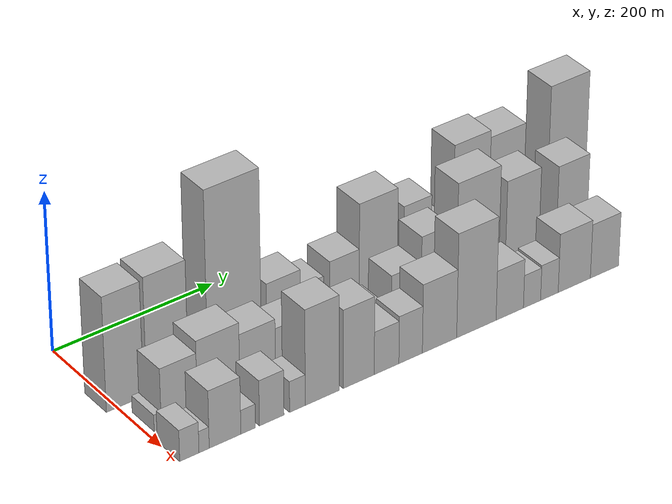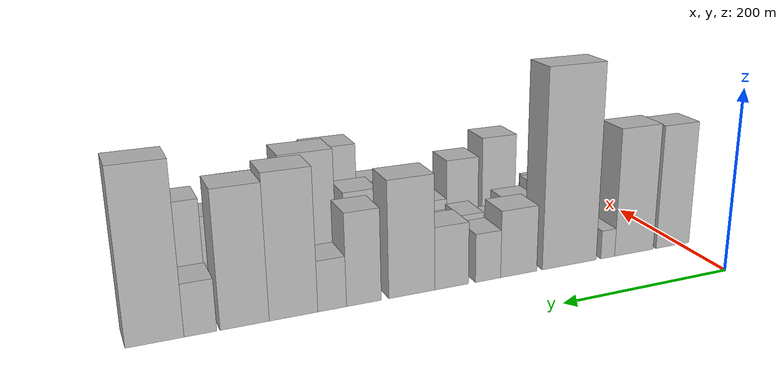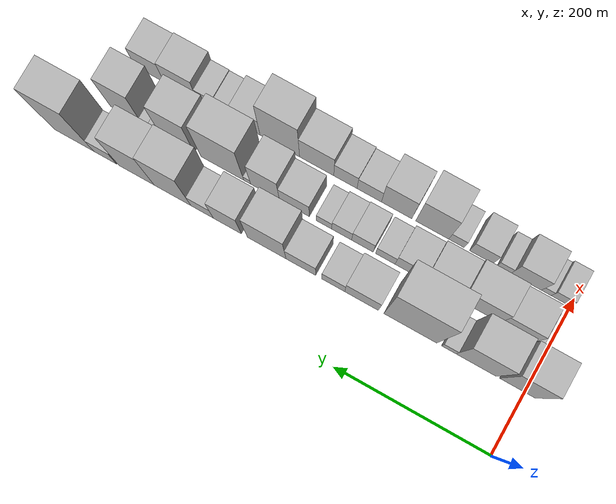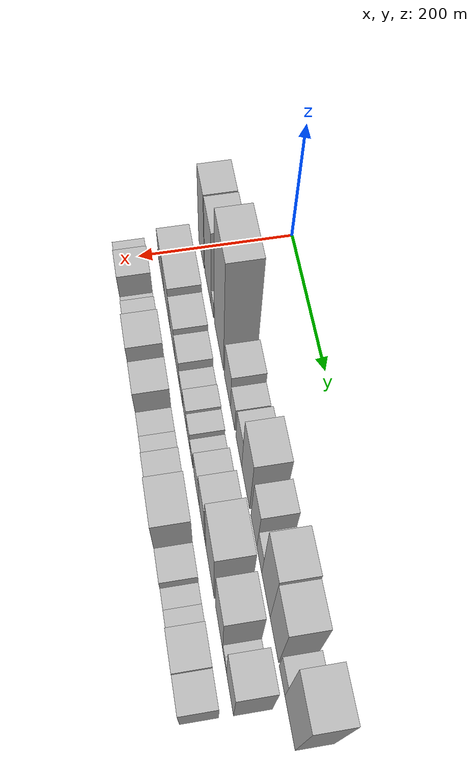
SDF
<sdf version="1.6">
 <world name="default">
  <model name="building_17">
   <static>1</static>
   <pose>100.0000 9.3949 0 0.000000 0.000000 0.000000</pose>
   <link name="link">
    <pose>0 0 72.00 0 0 0</pose>
    <collision name="collision"><geometry><box><size>40.0000 45.2859 144.0000</size></box></geometry></collision>
    <visual name="visual">
     <cast_shadows>0</cast_shadows>
     <geometry><box><size>40.0000 45.2859 144.0000</size></box></geometry>
     <material>
      <script>
       <uri>model://HANNAS_wall/materials/scripts</uri>
       <uri>model://HANNAS_wall/materials/textures</uri>
       <name>vrc/HANNAS_wall</name>
      </script>
     </material>
    </visual>
   </link>
  </model>
  <model name="building_18">
   <static>1</static>
   <pose>100.0000 61.7021 0 0.000000 0.000000 0.000000</pose>
   <link name="link">
    <pose>0 0 73.50 0 0 0</pose>
    <collision name="collision"><geometry><box><size>40.0000 51.3285 147.0000</size></box></geometry></collision>
    <visual name="visual">
     <cast_shadows>0</cast_shadows>
     <geometry><box><size>40.0000 51.3285 147.0000</size></box></geometry>
     <material>
      <script>
       <uri>model://HANNAS_wall/materials/scripts</uri>
       <uri>model://HANNAS_wall/materials/textures</uri>
       <name>vrc/HANNAS_wall</name>
      </script>
     </material>
    </visual>
   </link>
  </model>
  <model name="building_19">
   <static>1</static>
   <pose>100.0000 96.4428 0 0.000000 0.000000 0.000000</pose>
   <link name="link">
    <pose>0 0 16.50 0 0 0</pose>
    <collision name="collision"><geometry><box><size>40.0000 18.1529 33.0000</size></box></geometry></collision>
    <visual name="visual">
     <cast_shadows>0</cast_shadows>
     <geometry><box><size>40.0000 18.1529 33.0000</size></box></geometry>
     <material>
      <script>
       <uri>model://HANNAS_wall/materials/scripts</uri>
       <uri>model://HANNAS_wall/materials/textures</uri>
       <name>vrc/HANNAS_wall</name>
      </script>
     </material>
    </visual>
   </link>
  </model>
  <model name="building_20">
   <static>1</static>
   <pose>100.0000 145.3928 0 0.000000 0.000000 0.000000</pose>
   <link name="link">
    <pose>0 0 111.00 0 0 0</pose>
    <collision name="collision"><geometry><box><size>40.0000 67.7470 222.0000</size></box></geometry></collision>
    <visual name="visual">
     <cast_shadows>0</cast_shadows>
     <geometry><box><size>40.0000 67.7470 222.0000</size></box></geometry>
     <material>
      <script>
       <uri>model://HANNAS_wall/materials/scripts</uri>
       <uri>model://HANNAS_wall/materials/textures</uri>
       <name>vrc/HANNAS_wall</name>
      </script>
     </material>
    </visual>
   </link>
  </model>
  <model name="building_21">
   <static>1</static>
   <pose>100.0000 207.8887 0 0.000000 0.000000 0.000000</pose>
   <link name="link">
    <pose>0 0 37.50 0 0 0</pose>
    <collision name="collision"><geometry><box><size>40.0000 43.2449 75.0000</size></box></geometry></collision>
    <visual name="visual">
     <cast_shadows>0</cast_shadows>
     <geometry><box><size>40.0000 43.2449 75.0000</size></box></geometry>
     <material>
      <script>
       <uri>model://HANNAS_wall/materials/scripts</uri>
       <uri>model://HANNAS_wall/materials/textures</uri>
       <name>vrc/HANNAS_wall</name>
      </script>
     </material>
    </visual>
   </link>
  </model>
  <model name="building_22">
   <static>1</static>
   <pose>100.0000 244.3241 0 0.000000 0.000000 0.000000</pose>
   <link name="link">
    <pose>0 0 27.00 0 0 0</pose>
    <collision name="collision"><geometry><box><size>40.0000 29.6258 54.0000</size></box></geometry></collision>
    <visual name="visual">
     <cast_shadows>0</cast_shadows>
     <geometry><box><size>40.0000 29.6258 54.0000</size></box></geometry>
     <material>
      <script>
       <uri>model://HANNAS_wall/materials/scripts</uri>
       <uri>model://HANNAS_wall/materials/textures</uri>
       <name>vrc/HANNAS_wall</name>
      </script>
     </material>
    </visual>
   </link>
  </model>
  <model name="building_23">
   <static>1</static>
   <pose>100.0000 286.3577 0 0.000000 0.000000 0.000000</pose>
   <link name="link">
    <pose>0 0 34.50 0 0 0</pose>
    <collision name="collision"><geometry><box><size>40.0000 38.4415 69.0000</size></box></geometry></collision>
    <visual name="visual">
     <cast_shadows>0</cast_shadows>
     <geometry><box><size>40.0000 38.4415 69.0000</size></box></geometry>
     <material>
      <script>
       <uri>model://HANNAS_wall/materials/scripts</uri>
       <uri>model://HANNAS_wall/materials/textures</uri>
       <name>vrc/HANNAS_wall</name>
      </script>
     </material>
    </visual>
   </link>
  </model>
  <model name="building_24">
   <static>1</static>
   <pose>100.0000 330.7037 0 0.000000 0.000000 0.000000</pose>
   <link name="link">
    <pose>0 0 63.00 0 0 0</pose>
    <collision name="collision"><geometry><box><size>40.0000 50.2504 126.0000</size></box></geometry></collision>
    <visual name="visual">
     <cast_shadows>0</cast_shadows>
     <geometry><box><size>40.0000 50.2504 126.0000</size></box></geometry>
     <material>
      <script>
       <uri>model://HANNAS_wall/materials/scripts</uri>
       <uri>model://HANNAS_wall/materials/textures</uri>
       <name>vrc/HANNAS_wall</name>
      </script>
     </material>
    </visual>
   </link>
  </model>
  <model name="building_25">
   <static>1</static>
   <pose>100.0000 382.1720 0 0.000000 0.000000 0.000000</pose>
   <link name="link">
    <pose>0 0 49.50 0 0 0</pose>
    <collision name="collision"><geometry><box><size>40.0000 36.6862 99.0000</size></box></geometry></collision>
    <visual name="visual">
     <cast_shadows>0</cast_shadows>
     <geometry><box><size>40.0000 36.6862 99.0000</size></box></geometry>
     <material>
      <script>
       <uri>model://HANNAS_wall/materials/scripts</uri>
       <uri>model://HANNAS_wall/materials/textures</uri>
       <name>vrc/HANNAS_wall</name>
      </script>
     </material>
    </visual>
   </link>
  </model>
  <model name="building_26">
   <static>1</static>
   <pose>100.0000 415.2358 0 0.000000 0.000000 0.000000</pose>
   <link name="link">
    <pose>0 0 27.00 0 0 0</pose>
    <collision name="collision"><geometry><box><size>40.0000 29.4415 54.0000</size></box></geometry></collision>
    <visual name="visual">
     <cast_shadows>0</cast_shadows>
     <geometry><box><size>40.0000 29.4415 54.0000</size></box></geometry>
     <material>
      <script>
       <uri>model://HANNAS_wall/materials/scripts</uri>
       <uri>model://HANNAS_wall/materials/textures</uri>
       <name>vrc/HANNAS_wall</name>
      </script>
     </material>
    </visual>
   </link>
  </model>
  <model name="building_27">
   <static>1</static>
   <pose>100.0000 454.1759 0 0.000000 0.000000 0.000000</pose>
   <link name="link">
    <pose>0 0 75.00 0 0 0</pose>
    <collision name="collision"><geometry><box><size>40.0000 48.4387 150.0000</size></box></geometry></collision>
    <visual name="visual">
     <cast_shadows>0</cast_shadows>
     <geometry><box><size>40.0000 48.4387 150.0000</size></box></geometry>
     <material>
      <script>
       <uri>model://HANNAS_wall/materials/scripts</uri>
       <uri>model://HANNAS_wall/materials/textures</uri>
       <name>vrc/HANNAS_wall</name>
      </script>
     </material>
    </visual>
   </link>
  </model>
  <model name="building_28">
   <static>1</static>
   <pose>100.0000 501.9611 0 0.000000 0.000000 0.000000</pose>
   <link name="link">
    <pose>0 0 70.50 0 0 0</pose>
    <collision name="collision"><geometry><box><size>40.0000 47.1316 141.0000</size></box></geometry></collision>
    <visual name="visual">
     <cast_shadows>0</cast_shadows>
     <geometry><box><size>40.0000 47.1316 141.0000</size></box></geometry>
     <material>
      <script>
       <uri>model://HANNAS_wall/materials/scripts</uri>
       <uri>model://HANNAS_wall/materials/textures</uri>
       <name>vrc/HANNAS_wall</name>
      </script>
     </material>
    </visual>
   </link>
  </model>
  <model name="building_29">
   <static>1</static>
   <pose>100.0000 543.6830 0 0.000000 0.000000 0.000000</pose>
   <link name="link">
    <pose>0 0 27.00 0 0 0</pose>
    <collision name="collision"><geometry><box><size>40.0000 30.3123 54.0000</size></box></geometry></collision>
    <visual name="visual">
     <cast_shadows>0</cast_shadows>
     <geometry><box><size>40.0000 30.3123 54.0000</size></box></geometry>
     <material>
      <script>
       <uri>model://HANNAS_wall/materials/scripts</uri>
       <uri>model://HANNAS_wall/materials/textures</uri>
       <name>vrc/HANNAS_wall</name>
      </script>
     </material>
    </visual>
   </link>
  </model>
  <model name="building_30">
   <static>1</static>
   <pose>100.0000 585.3237 0 0.000000 0.000000 0.000000</pose>
   <link name="link">
    <pose>0 0 87.00 0 0 0</pose>
    <collision name="collision"><geometry><box><size>40.0000 52.9691 174.0000</size></box></geometry></collision>
    <visual name="visual">
     <cast_shadows>0</cast_shadows>
     <geometry><box><size>40.0000 52.9691 174.0000</size></box></geometry>
     <material>
      <script>
       <uri>model://HANNAS_wall/materials/scripts</uri>
       <uri>model://HANNAS_wall/materials/textures</uri>
       <name>vrc/HANNAS_wall</name>
      </script>
     </material>
    </visual>
   </link>
  </model>
  <model name="building_49">
   <static>1</static>
   <pose>155.0000 12.3418 0 0.000000 0.000000 0.000000</pose>
   <link name="link">
    <pose>0 0 10.50 0 0 0</pose>
    <collision name="collision"><geometry><box><size>40.0000 8.6510 21.0000</size></box></geometry></collision>
    <visual name="visual">
     <cast_shadows>0</cast_shadows>
     <geometry><box><size>40.0000 8.6510 21.0000</size></box></geometry>
     <material>
      <script>
       <uri>model://HANNAS_wall/materials/scripts</uri>
       <uri>model://HANNAS_wall/materials/textures</uri>
       <name>vrc/HANNAS_wall</name>
      </script>
     </material>
    </visual>
   </link>
  </model>
  <model name="building_50">
   <static>1</static>
   <pose>155.0000 38.7052 0 0.000000 0.000000 0.000000</pose>
   <link name="link">
    <pose>0 0 37.50 0 0 0</pose>
    <collision name="collision"><geometry><box><size>40.0000 44.0758 75.0000</size></box></geometry></collision>
    <visual name="visual">
     <cast_shadows>0</cast_shadows>
     <geometry><box><size>40.0000 44.0758 75.0000</size></box></geometry>
     <material>
      <script>
       <uri>model://HANNAS_wall/materials/scripts</uri>
       <uri>model://HANNAS_wall/materials/textures</uri>
       <name>vrc/HANNAS_wall</name>
      </script>
     </material>
    </visual>
   </link>
  </model>
  <model name="building_51">
   <static>1</static>
   <pose>155.0000 87.0932 0 0.000000 0.000000 0.000000</pose>
   <link name="link">
    <pose>0 0 45.00 0 0 0</pose>
    <collision name="collision"><geometry><box><size>40.0000 52.7002 90.0000</size></box></geometry></collision>
    <visual name="visual">
     <cast_shadows>0</cast_shadows>
     <geometry><box><size>40.0000 52.7002 90.0000</size></box></geometry>
     <material>
      <script>
       <uri>model://HANNAS_wall/materials/scripts</uri>
       <uri>model://HANNAS_wall/materials/textures</uri>
       <name>vrc/HANNAS_wall</name>
      </script>
     </material>
    </visual>
   </link>
  </model>
  <model name="building_52">
   <static>1</static>
   <pose>155.0000 135.7613 0 0.000000 0.000000 0.000000</pose>
   <link name="link">
    <pose>0 0 37.50 0 0 0</pose>
    <collision name="collision"><geometry><box><size>40.0000 44.6360 75.0000</size></box></geometry></collision>
    <visual name="visual">
     <cast_shadows>0</cast_shadows>
     <geometry><box><size>40.0000 44.6360 75.0000</size></box></geometry>
     <material>
      <script>
       <uri>model://HANNAS_wall/materials/scripts</uri>
       <uri>model://HANNAS_wall/materials/textures</uri>
       <name>vrc/HANNAS_wall</name>
      </script>
     </material>
    </visual>
   </link>
  </model>
  <model name="building_53">
   <static>1</static>
   <pose>155.0000 176.6561 0 0.000000 0.000000 0.000000</pose>
   <link name="link">
    <pose>0 0 31.50 0 0 0</pose>
    <collision name="collision"><geometry><box><size>40.0000 37.1536 63.0000</size></box></geometry></collision>
    <visual name="visual">
     <cast_shadows>0</cast_shadows>
     <geometry><box><size>40.0000 37.1536 63.0000</size></box></geometry>
     <material>
      <script>
       <uri>model://HANNAS_wall/materials/scripts</uri>
       <uri>model://HANNAS_wall/materials/textures</uri>
       <name>vrc/HANNAS_wall</name>
      </script>
     </material>
    </visual>
   </link>
  </model>
  <model name="building_54">
   <static>1</static>
   <pose>155.0000 207.8142 0 0.000000 0.000000 0.000000</pose>
   <link name="link">
    <pose>0 0 22.50 0 0 0</pose>
    <collision name="collision"><geometry><box><size>40.0000 25.1626 45.0000</size></box></geometry></collision>
    <visual name="visual">
     <cast_shadows>0</cast_shadows>
     <geometry><box><size>40.0000 25.1626 45.0000</size></box></geometry>
     <material>
      <script>
       <uri>model://HANNAS_wall/materials/scripts</uri>
       <uri>model://HANNAS_wall/materials/textures</uri>
       <name>vrc/HANNAS_wall</name>
      </script>
     </material>
    </visual>
   </link>
  </model>
  <model name="building_55">
   <static>1</static>
   <pose>155.0000 237.3686 0 0.000000 0.000000 0.000000</pose>
   <link name="link">
    <pose>0 0 27.00 0 0 0</pose>
    <collision name="collision"><geometry><box><size>40.0000 27.9462 54.0000</size></box></geometry></collision>
    <visual name="visual">
     <cast_shadows>0</cast_shadows>
     <geometry><box><size>40.0000 27.9462 54.0000</size></box></geometry>
     <material>
      <script>
       <uri>model://HANNAS_wall/materials/scripts</uri>
       <uri>model://HANNAS_wall/materials/textures</uri>
       <name>vrc/HANNAS_wall</name>
      </script>
     </material>
    </visual>
   </link>
  </model>
  <model name="building_56">
   <static>1</static>
   <pose>155.0000 264.2852 0 0.000000 0.000000 0.000000</pose>
   <link name="link">
    <pose>0 0 24.00 0 0 0</pose>
    <collision name="collision"><geometry><box><size>40.0000 25.8870 48.0000</size></box></geometry></collision>
    <visual name="visual">
     <cast_shadows>0</cast_shadows>
     <geometry><box><size>40.0000 25.8870 48.0000</size></box></geometry>
     <material>
      <script>
       <uri>model://HANNAS_wall/materials/scripts</uri>
       <uri>model://HANNAS_wall/materials/textures</uri>
       <name>vrc/HANNAS_wall</name>
      </script>
     </material>
    </visual>
   </link>
  </model>
  <model name="building_57">
   <static>1</static>
   <pose>155.0000 287.2711 0 0.000000 0.000000 0.000000</pose>
   <link name="link">
    <pose>0 0 18.00 0 0 0</pose>
    <collision name="collision"><geometry><box><size>40.0000 20.0847 36.0000</size></box></geometry></collision>
    <visual name="visual">
     <cast_shadows>0</cast_shadows>
     <geometry><box><size>40.0000 20.0847 36.0000</size></box></geometry>
     <material>
      <script>
       <uri>model://HANNAS_wall/materials/scripts</uri>
       <uri>model://HANNAS_wall/materials/textures</uri>
       <name>vrc/HANNAS_wall</name>
      </script>
     </material>
    </visual>
   </link>
  </model>
  <model name="building_58">
   <static>1</static>
   <pose>155.0000 325.8514 0 0.000000 0.000000 0.000000</pose>
   <link name="link">
    <pose>0 0 33.00 0 0 0</pose>
    <collision name="collision"><geometry><box><size>40.0000 39.0759 66.0000</size></box></geometry></collision>
    <visual name="visual">
     <cast_shadows>0</cast_shadows>
     <geometry><box><size>40.0000 39.0759 66.0000</size></box></geometry>
     <material>
      <script>
       <uri>model://HANNAS_wall/materials/scripts</uri>
       <uri>model://HANNAS_wall/materials/textures</uri>
       <name>vrc/HANNAS_wall</name>
      </script>
     </material>
    </visual>
   </link>
  </model>
  <model name="building_59">
   <static>1</static>
   <pose>155.0000 364.3384 0 0.000000 0.000000 0.000000</pose>
   <link name="link">
    <pose>0 0 49.50 0 0 0</pose>
    <collision name="collision"><geometry><box><size>40.0000 37.8981 99.0000</size></box></geometry></collision>
    <visual name="visual">
     <cast_shadows>0</cast_shadows>
     <geometry><box><size>40.0000 37.8981 99.0000</size></box></geometry>
     <material>
      <script>
       <uri>model://HANNAS_wall/materials/scripts</uri>
       <uri>model://HANNAS_wall/materials/textures</uri>
       <name>vrc/HANNAS_wall</name>
      </script>
     </material>
    </visual>
   </link>
  </model>
  <model name="building_60">
   <static>1</static>
   <pose>155.0000 387.7461 0 0.000000 0.000000 0.000000</pose>
   <link name="link">
    <pose>0 0 10.50 0 0 0</pose>
    <collision name="collision"><geometry><box><size>40.0000 8.9174 21.0000</size></box></geometry></collision>
    <visual name="visual">
     <cast_shadows>0</cast_shadows>
     <geometry><box><size>40.0000 8.9174 21.0000</size></box></geometry>
     <material>
      <script>
       <uri>model://HANNAS_wall/materials/scripts</uri>
       <uri>model://HANNAS_wall/materials/textures</uri>
       <name>vrc/HANNAS_wall</name>
      </script>
     </material>
    </visual>
   </link>
  </model>
  <model name="building_61">
   <static>1</static>
   <pose>155.0000 420.4338 0 0.000000 0.000000 0.000000</pose>
   <link name="link">
    <pose>0 0 73.50 0 0 0</pose>
    <collision name="collision"><geometry><box><size>40.0000 56.4580 147.0000</size></box></geometry></collision>
    <visual name="visual">
     <cast_shadows>0</cast_shadows>
     <geometry><box><size>40.0000 56.4580 147.0000</size></box></geometry>
     <material>
      <script>
       <uri>model://HANNAS_wall/materials/scripts</uri>
       <uri>model://HANNAS_wall/materials/textures</uri>
       <name>vrc/HANNAS_wall</name>
      </script>
     </material>
    </visual>
   </link>
  </model>
  <model name="building_62">
   <static>1</static>
   <pose>155.0000 480.4092 0 0.000000 0.000000 0.000000</pose>
   <link name="link">
    <pose>0 0 61.50 0 0 0</pose>
    <collision name="collision"><geometry><box><size>40.0000 45.4929 123.0000</size></box></geometry></collision>
    <visual name="visual">
     <cast_shadows>0</cast_shadows>
     <geometry><box><size>40.0000 45.4929 123.0000</size></box></geometry>
     <material>
      <script>
       <uri>model://HANNAS_wall/materials/scripts</uri>
       <uri>model://HANNAS_wall/materials/textures</uri>
       <name>vrc/HANNAS_wall</name>
      </script>
     </material>
    </visual>
   </link>
  </model>
  <model name="building_63">
   <static>1</static>
   <pose>155.0000 509.0724 0 0.000000 0.000000 0.000000</pose>
   <link name="link">
    <pose>0 0 13.50 0 0 0</pose>
    <collision name="collision"><geometry><box><size>40.0000 11.8335 27.0000</size></box></geometry></collision>
    <visual name="visual">
     <cast_shadows>0</cast_shadows>
     <geometry><box><size>40.0000 11.8335 27.0000</size></box></geometry>
     <material>
      <script>
       <uri>model://HANNAS_wall/materials/scripts</uri>
       <uri>model://HANNAS_wall/materials/textures</uri>
       <name>vrc/HANNAS_wall</name>
      </script>
     </material>
    </visual>
   </link>
  </model>
  <model name="building_64">
   <static>1</static>
   <pose>155.0000 521.1236 0 0.000000 0.000000 0.000000</pose>
   <link name="link">
    <pose>0 0 13.50 0 0 0</pose>
    <collision name="collision"><geometry><box><size>40.0000 12.2689 27.0000</size></box></geometry></collision>
    <visual name="visual">
     <cast_shadows>0</cast_shadows>
     <geometry><box><size>40.0000 12.2689 27.0000</size></box></geometry>
     <material>
      <script>
       <uri>model://HANNAS_wall/materials/scripts</uri>
       <uri>model://HANNAS_wall/materials/textures</uri>
       <name>vrc/HANNAS_wall</name>
      </script>
     </material>
    </visual>
   </link>
  </model>
  <model name="building_65">
   <static>1</static>
   <pose>155.0000 548.3630 0 0.000000 0.000000 0.000000</pose>
   <link name="link">
    <pose>0 0 57.00 0 0 0</pose>
    <collision name="collision"><geometry><box><size>40.0000 42.2099 114.0000</size></box></geometry></collision>
    <visual name="visual">
     <cast_shadows>0</cast_shadows>
     <geometry><box><size>40.0000 42.2099 114.0000</size></box></geometry>
     <material>
      <script>
       <uri>model://HANNAS_wall/materials/scripts</uri>
       <uri>model://HANNAS_wall/materials/textures</uri>
       <name>vrc/HANNAS_wall</name>
      </script>
     </material>
    </visual>
   </link>
  </model>
  <model name="building_79">
   <static>1</static>
   <pose>210.0000 13.0824 0 0.000000 0.000000 0.000000</pose>
   <link name="link">
    <pose>0 0 19.50 0 0 0</pose>
    <collision name="collision"><geometry><box><size>40.0000 23.3154 39.0000</size></box></geometry></collision>
    <visual name="visual">
     <cast_shadows>0</cast_shadows>
     <geometry><box><size>40.0000 23.3154 39.0000</size></box></geometry>
     <material>
      <script>
       <uri>model://HANNAS_wall/materials/scripts</uri>
       <uri>model://HANNAS_wall/materials/textures</uri>
       <name>vrc/HANNAS_wall</name>
      </script>
     </material>
    </visual>
   </link>
  </model>
  <model name="building_80">
   <static>1</static>
   <pose>210.0000 30.9591 0 0.000000 0.000000 0.000000</pose>
   <link name="link">
    <pose>0 0 13.50 0 0 0</pose>
    <collision name="collision"><geometry><box><size>40.0000 12.4379 27.0000</size></box></geometry></collision>
    <visual name="visual">
     <cast_shadows>0</cast_shadows>
     <geometry><box><size>40.0000 12.4379 27.0000</size></box></geometry>
     <material>
      <script>
       <uri>model://HANNAS_wall/materials/scripts</uri>
       <uri>model://HANNAS_wall/materials/textures</uri>
       <name>vrc/HANNAS_wall</name>
      </script>
     </material>
    </visual>
   </link>
  </model>
  <model name="building_81">
   <static>1</static>
   <pose>210.0000 56.5316 0 0.000000 0.000000 0.000000</pose>
   <link name="link">
    <pose>0 0 36.00 0 0 0</pose>
    <collision name="collision"><geometry><box><size>40.0000 38.7072 72.0000</size></box></geometry></collision>
    <visual name="visual">
     <cast_shadows>0</cast_shadows>
     <geometry><box><size>40.0000 38.7072 72.0000</size></box></geometry>
     <material>
      <script>
       <uri>model://HANNAS_wall/materials/scripts</uri>
       <uri>model://HANNAS_wall/materials/textures</uri>
       <name>vrc/HANNAS_wall</name>
      </script>
     </material>
    </visual>
   </link>
  </model>
  <model name="building_82">
   <static>1</static>
   <pose>210.0000 84.8071 0 0.000000 0.000000 0.000000</pose>
   <link name="link">
    <pose>0 0 15.00 0 0 0</pose>
    <collision name="collision"><geometry><box><size>40.0000 17.8437 30.0000</size></box></geometry></collision>
    <visual name="visual">
     <cast_shadows>0</cast_shadows>
     <geometry><box><size>40.0000 17.8437 30.0000</size></box></geometry>
     <material>
      <script>
       <uri>model://HANNAS_wall/materials/scripts</uri>
       <uri>model://HANNAS_wall/materials/textures</uri>
       <name>vrc/HANNAS_wall</name>
      </script>
     </material>
    </visual>
   </link>
  </model>
  <model name="building_83">
   <static>1</static>
   <pose>210.0000 113.9441 0 0.000000 0.000000 0.000000</pose>
   <link name="link">
    <pose>0 0 28.50 0 0 0</pose>
    <collision name="collision"><geometry><box><size>40.0000 30.4303 57.0000</size></box></geometry></collision>
    <visual name="visual">
     <cast_shadows>0</cast_shadows>
     <geometry><box><size>40.0000 30.4303 57.0000</size></box></geometry>
     <material>
      <script>
       <uri>model://HANNAS_wall/materials/scripts</uri>
       <uri>model://HANNAS_wall/materials/textures</uri>
       <name>vrc/HANNAS_wall</name>
      </script>
     </material>
    </visual>
   </link>
  </model>
  <model name="building_84">
   <static>1</static>
   <pose>210.0000 145.9851 0 0.000000 0.000000 0.000000</pose>
   <link name="link">
    <pose>0 0 19.50 0 0 0</pose>
    <collision name="collision"><geometry><box><size>40.0000 19.6517 39.0000</size></box></geometry></collision>
    <visual name="visual">
     <cast_shadows>0</cast_shadows>
     <geometry><box><size>40.0000 19.6517 39.0000</size></box></geometry>
     <material>
      <script>
       <uri>model://HANNAS_wall/materials/scripts</uri>
       <uri>model://HANNAS_wall/materials/textures</uri>
       <name>vrc/HANNAS_wall</name>
      </script>
     </material>
    </visual>
   </link>
  </model>
  <model name="building_85">
   <static>1</static>
   <pose>210.0000 177.2001 0 0.000000 0.000000 0.000000</pose>
   <link name="link">
    <pose>0 0 60.00 0 0 0</pose>
    <collision name="collision"><geometry><box><size>40.0000 42.7782 120.0000</size></box></geometry></collision>
    <visual name="visual">
     <cast_shadows>0</cast_shadows>
     <geometry><box><size>40.0000 42.7782 120.0000</size></box></geometry>
     <material>
      <script>
       <uri>model://HANNAS_wall/materials/scripts</uri>
       <uri>model://HANNAS_wall/materials/textures</uri>
       <name>vrc/HANNAS_wall</name>
      </script>
     </material>
    </visual>
   </link>
  </model>
  <model name="building_86">
   <static>1</static>
   <pose>210.0000 223.3589 0 0.000000 0.000000 0.000000</pose>
   <link name="link">
    <pose>0 0 49.50 0 0 0</pose>
    <collision name="collision"><geometry><box><size>40.0000 39.5394 99.0000</size></box></geometry></collision>
    <visual name="visual">
     <cast_shadows>0</cast_shadows>
     <geometry><box><size>40.0000 39.5394 99.0000</size></box></geometry>
     <material>
      <script>
       <uri>model://HANNAS_wall/materials/scripts</uri>
       <uri>model://HANNAS_wall/materials/textures</uri>
       <name>vrc/HANNAS_wall</name>
      </script>
     </material>
    </visual>
   </link>
  </model>
  <model name="building_87">
   <static>1</static>
   <pose>210.0000 259.0063 0 0.000000 0.000000 0.000000</pose>
   <link name="link">
    <pose>0 0 27.00 0 0 0</pose>
    <collision name="collision"><geometry><box><size>40.0000 31.7555 54.0000</size></box></geometry></collision>
    <visual name="visual">
     <cast_shadows>0</cast_shadows>
     <geometry><box><size>40.0000 31.7555 54.0000</size></box></geometry>
     <material>
      <script>
       <uri>model://HANNAS_wall/materials/scripts</uri>
       <uri>model://HANNAS_wall/materials/textures</uri>
       <name>vrc/HANNAS_wall</name>
      </script>
     </material>
    </visual>
   </link>
  </model>
  <model name="building_88">
   <static>1</static>
   <pose>210.0000 290.0843 0 0.000000 0.000000 0.000000</pose>
   <link name="link">
    <pose>0 0 30.00 0 0 0</pose>
    <collision name="collision"><geometry><box><size>40.0000 30.4005 60.0000</size></box></geometry></collision>
    <visual name="visual">
     <cast_shadows>0</cast_shadows>
     <geometry><box><size>40.0000 30.4005 60.0000</size></box></geometry>
     <material>
      <script>
       <uri>model://HANNAS_wall/materials/scripts</uri>
       <uri>model://HANNAS_wall/materials/textures</uri>
       <name>vrc/HANNAS_wall</name>
      </script>
     </material>
    </visual>
   </link>
  </model>
  <model name="building_89">
   <static>1</static>
   <pose>210.0000 327.7229 0 0.000000 0.000000 0.000000</pose>
   <link name="link">
    <pose>0 0 43.50 0 0 0</pose>
    <collision name="collision"><geometry><box><size>40.0000 44.8767 87.0000</size></box></geometry></collision>
    <visual name="visual">
     <cast_shadows>0</cast_shadows>
     <geometry><box><size>40.0000 44.8767 87.0000</size></box></geometry>
     <material>
      <script>
       <uri>model://HANNAS_wall/materials/scripts</uri>
       <uri>model://HANNAS_wall/materials/textures</uri>
       <name>vrc/HANNAS_wall</name>
      </script>
     </material>
    </visual>
   </link>
  </model>
  <model name="building_90">
   <static>1</static>
   <pose>210.0000 376.2579 0 0.000000 0.000000 0.000000</pose>
   <link name="link">
    <pose>0 0 66.00 0 0 0</pose>
    <collision name="collision"><geometry><box><size>40.0000 52.1932 132.0000</size></box></geometry></collision>
    <visual name="visual">
     <cast_shadows>0</cast_shadows>
     <geometry><box><size>40.0000 52.1932 132.0000</size></box></geometry>
     <material>
      <script>
       <uri>model://HANNAS_wall/materials/scripts</uri>
       <uri>model://HANNAS_wall/materials/textures</uri>
       <name>vrc/HANNAS_wall</name>
      </script>
     </material>
    </visual>
   </link>
  </model>
  <model name="building_91">
   <static>1</static>
   <pose>210.0000 420.6712 0 0.000000 0.000000 0.000000</pose>
   <link name="link">
    <pose>0 0 31.50 0 0 0</pose>
    <collision name="collision"><geometry><box><size>40.0000 36.6335 63.0000</size></box></geometry></collision>
    <visual name="visual">
     <cast_shadows>0</cast_shadows>
     <geometry><box><size>40.0000 36.6335 63.0000</size></box></geometry>
     <material>
      <script>
       <uri>model://HANNAS_wall/materials/scripts</uri>
       <uri>model://HANNAS_wall/materials/textures</uri>
       <name>vrc/HANNAS_wall</name>
      </script>
     </material>
    </visual>
   </link>
  </model>
  <model name="building_92">
   <static>1</static>
   <pose>210.0000 450.5598 0 0.000000 0.000000 0.000000</pose>
   <link name="link">
    <pose>0 0 21.00 0 0 0</pose>
    <collision name="collision"><geometry><box><size>40.0000 23.1437 42.0000</size></box></geometry></collision>
    <visual name="visual">
     <cast_shadows>0</cast_shadows>
     <geometry><box><size>40.0000 23.1437 42.0000</size></box></geometry>
     <material>
      <script>
       <uri>model://HANNAS_wall/materials/scripts</uri>
       <uri>model://HANNAS_wall/materials/textures</uri>
       <name>vrc/HANNAS_wall</name>
      </script>
     </material>
    </visual>
   </link>
  </model>
  <model name="building_93">
   <static>1</static>
   <pose>210.0000 474.0695 0 0.000000 0.000000 0.000000</pose>
   <link name="link">
    <pose>0 0 22.50 0 0 0</pose>
    <collision name="collision"><geometry><box><size>40.0000 23.8755 45.0000</size></box></geometry></collision>
    <visual name="visual">
     <cast_shadows>0</cast_shadows>
     <geometry><box><size>40.0000 23.8755 45.0000</size></box></geometry>
     <material>
      <script>
       <uri>model://HANNAS_wall/materials/scripts</uri>
       <uri>model://HANNAS_wall/materials/textures</uri>
       <name>vrc/HANNAS_wall</name>
      </script>
     </material>
    </visual>
   </link>
  </model>
  <model name="building_94">
   <static>1</static>
   <pose>210.0000 508.0080 0 0.000000 0.000000 0.000000</pose>
   <link name="link">
    <pose>0 0 37.50 0 0 0</pose>
    <collision name="collision"><geometry><box><size>40.0000 44.0016 75.0000</size></box></geometry></collision>
    <visual name="visual">
     <cast_shadows>0</cast_shadows>
     <geometry><box><size>40.0000 44.0016 75.0000</size></box></geometry>
     <material>
      <script>
       <uri>model://HANNAS_wall/materials/scripts</uri>
       <uri>model://HANNAS_wall/materials/textures</uri>
       <name>vrc/HANNAS_wall</name>
      </script>
     </material>
    </visual>
   </link>
  </model>
  <model name="building_95">
   <static>1</static>
   <pose>210.0000 549.4717 0 0.000000 0.000000 0.000000</pose>
   <link name="link">
    <pose>0 0 34.50 0 0 0</pose>
    <collision name="collision"><geometry><box><size>40.0000 38.9258 69.0000</size></box></geometry></collision>
    <visual name="visual">
     <cast_shadows>0</cast_shadows>
     <geometry><box><size>40.0000 38.9258 69.0000</size></box></geometry>
     <material>
      <script>
       <uri>model://HANNAS_wall/materials/scripts</uri>
       <uri>model://HANNAS_wall/materials/textures</uri>
       <name>vrc/HANNAS_wall</name>
      </script>
     </material>
    </visual>
   </link>
  </model>
 </world>
</sdf>
